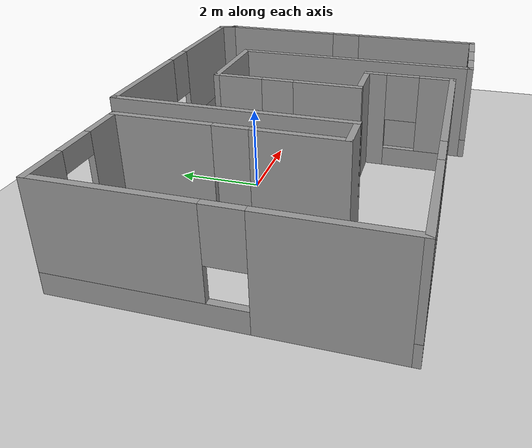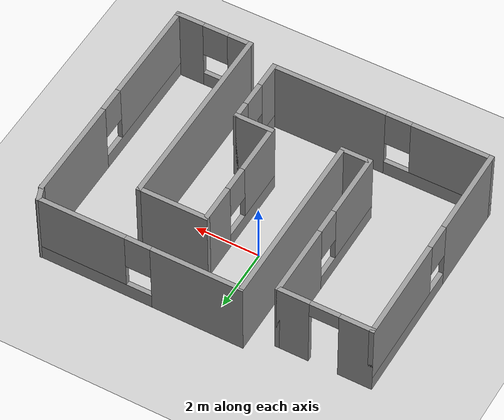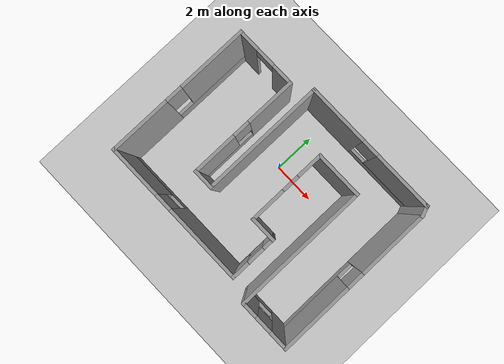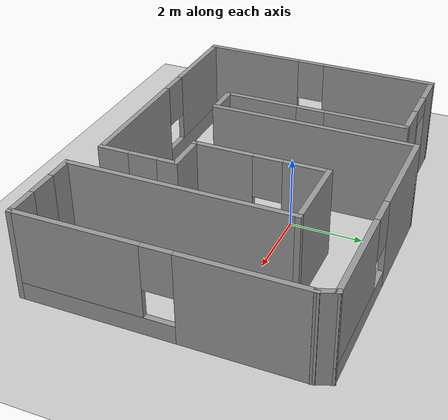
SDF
<sdf version="1.6">
 <world name="default">
  <light name="sun" type="directional">
   <pose>0 0 10 0 -0 0</pose>
   <diffuse>0.8 0.8 0.8 1</diffuse>
   <specular>0.2 0.2 0.2 1</specular>
   <attenuation>
    <range>1000</range>
    <constant>0.9</constant>
    <linear>0.01</linear>
    <quadratic>0.001</quadratic>
   </attenuation>
   <direction>-0.5 0.1 -0.9</direction>
  </light>
  <model name="ground_plane">
   <static>1</static>
   <link name="link">
    <collision name="collision">
     <geometry><plane><normal>0 0 1</normal><size>100 100</size></plane></geometry>
     <surface>
      <contact><collide_bitmask>65535</collide_bitmask></contact>
      <friction><ode><mu>100</mu><mu2>50</mu2></ode></friction>
     </surface>
    </collision>
    <visual name="visual">
     <cast_shadows>0</cast_shadows>
     <geometry><plane><normal>0 0 1</normal><size>100 100</size></plane></geometry>
     <material>
      <script><uri>file://media/materials/scripts/gazebo.material</uri><name>Gazebo/Grey</name></script>
     </material>
    </visual>
   </link>
  </model>
  <gravity>0 0 -9.8</gravity>
  <magnetic_field>6e-06 2.3e-05 -4.2e-05</magnetic_field>
  <atmosphere type="adiabatic"/>
  <physics name="default_physics" default="0" type="ode">
   <max_step_size>0.001</max_step_size>
   <real_time_factor>1</real_time_factor>
   <real_time_update_rate>1000</real_time_update_rate>
  </physics>
  <scene><ambient>0.4 0.4 0.4 1</ambient><background>0.7 0.7 0.7 1</background><shadows>1</shadows></scene>
  <spherical_coordinates>
   <surface_model>EARTH_WGS84</surface_model>
   <latitude_deg>0</latitude_deg>
   <longitude_deg>0</longitude_deg>
   <elevation>0</elevation>
   <heading_deg>0</heading_deg>
  </spherical_coordinates>
  <model name="home2">
   <pose>0.272903 -0.933957 0 0 -0 0</pose>
   <link name="Wall_1">
    <pose>5.08922 -0.210779 0 0 0 -1.5708</pose>
    <visual name="Wall_1_Visual_0">
     <pose>-2.10228 0 1.25 0 -0 0</pose>
     <geometry><box><size>3.29544 0.15 2.5</size></box></geometry>
     <material>
      <script><uri>file://media/materials/scripts/gazebo.material</uri><name>Gazebo/Grey</name></script>
      <ambient>1 1 1 1</ambient>
     </material>
     <meta><layer>0</layer></meta>
    </visual>
    <collision name="Wall_1_Collision_0">
     <geometry><box><size>3.29544 0.15 2.5</size></box></geometry>
     <pose>-2.10228 0 1.25 0 -0 0</pose>
    </collision>
    <visual name="Wall_1_Visual_1">
     <pose>1.64772 0 0.25 0 -0 0</pose>
     <geometry><box><size>4.20456 0.15 0.5</size></box></geometry>
     <material>
      <script><uri>file://media/materials/scripts/gazebo.material</uri><name>Gazebo/Grey</name></script>
      <ambient>1 1 1 1</ambient>
     </material>
     <meta><layer>0</layer></meta>
    </visual>
    <collision name="Wall_1_Collision_1">
     <geometry><box><size>4.20456 0.15 0.5</size></box></geometry>
     <pose>1.64772 0 0.25 0 -0 0</pose>
    </collision>
    <visual name="Wall_1_Visual_2">
     <pose>2.04772 0 1.5 0 -0 0</pose>
     <geometry><box><size>3.40456 0.15 2</size></box></geometry>
     <material>
      <script><uri>file://media/materials/scripts/gazebo.material</uri><name>Gazebo/Grey</name></script>
      <ambient>1 1 1 1</ambient>
     </material>
     <meta><layer>0</layer></meta>
    </visual>
    <collision name="Wall_1_Collision_2">
     <geometry><box><size>3.40456 0.15 2</size></box></geometry>
     <pose>2.04772 0 1.5 0 -0 0</pose>
    </collision>
    <visual name="Wall_1_Visual_3">
     <pose>-0.054557 0 1.9 0 -0 0</pose>
     <geometry><box><size>0.8 0.15 1.2</size></box></geometry>
     <material>
      <script><uri>file://media/materials/scripts/gazebo.material</uri><name>Gazebo/Grey</name></script>
      <ambient>1 1 1 1</ambient>
     </material>
     <meta><layer>0</layer></meta>
    </visual>
    <collision name="Wall_1_Collision_3">
     <geometry><box><size>0.8 0.15 1.2</size></box></geometry>
     <pose>-0.054557 0 1.9 0 -0 0</pose>
    </collision>
   </link>
   <link name="Wall_10">
    <pose>-3.68578 3.36422 0 0 -0 0</pose>
    <visual name="Wall_10_Visual_0">
     <pose>-0.972259 0 1.25 0 -0 0</pose>
     <geometry><box><size>1.05548 0.15 2.5</size></box></geometry>
     <material>
      <script><uri>file://media/materials/scripts/gazebo.material</uri><name>Gazebo/Grey</name></script>
      <ambient>1 1 1 1</ambient>
     </material>
     <meta><layer>0</layer></meta>
    </visual>
    <collision name="Wall_10_Collision_0">
     <geometry><box><size>1.05548 0.15 2.5</size></box></geometry>
     <pose>-0.972259 0 1.25 0 -0 0</pose>
    </collision>
    <visual name="Wall_10_Visual_1">
     <pose>0.977741 0 1.25 0 -0 0</pose>
     <geometry><box><size>1.04452 0.15 2.5</size></box></geometry>
     <material>
      <script><uri>file://media/materials/scripts/gazebo.material</uri><name>Gazebo/Grey</name></script>
      <ambient>1 1 1 1</ambient>
     </material>
     <meta><layer>0</layer></meta>
    </visual>
    <collision name="Wall_10_Collision_1">
     <geometry><box><size>1.04452 0.15 2.5</size></box></geometry>
     <pose>0.977741 0 1.25 0 -0 0</pose>
    </collision>
    <visual name="Wall_10_Visual_2">
     <pose>0.005483 0 2.25 0 -0 0</pose>
     <geometry><box><size>0.9 0.15 0.5</size></box></geometry>
     <material>
      <script><uri>file://media/materials/scripts/gazebo.material</uri><name>Gazebo/Grey</name></script>
      <ambient>1 1 1 1</ambient>
     </material>
     <meta><layer>0</layer></meta>
    </visual>
    <collision name="Wall_10_Collision_2">
     <geometry><box><size>0.9 0.15 0.5</size></box></geometry>
     <pose>0.005483 0 2.25 0 -0 0</pose>
    </collision>
   </link>
   <link name="Wall_11">
    <pose>-2.26078 0.814221 0 0 0 -1.5708</pose>
    <visual name="Wall_11_Visual_0">
     <pose>-1.45972 0 1.25 0 -0 0</pose>
     <geometry><box><size>2.33056 0.15 2.5</size></box></geometry>
     <material>
      <script><uri>file://media/materials/scripts/gazebo.material</uri><name>Gazebo/Grey</name></script>
      <ambient>1 1 1 1</ambient>
     </material>
     <meta><layer>0</layer></meta>
    </visual>
    <collision name="Wall_11_Collision_0">
     <geometry><box><size>2.33056 0.15 2.5</size></box></geometry>
     <pose>-1.45972 0 1.25 0 -0 0</pose>
    </collision>
    <visual name="Wall_11_Visual_1">
     <pose>1.16528 0 0.25 0 -0 0</pose>
     <geometry><box><size>2.91944 0.15 0.5</size></box></geometry>
     <material>
      <script><uri>file://media/materials/scripts/gazebo.material</uri><name>Gazebo/Grey</name></script>
      <ambient>1 1 1 1</ambient>
     </material>
     <meta><layer>0</layer></meta>
    </visual>
    <collision name="Wall_11_Collision_1">
     <geometry><box><size>2.91944 0.15 0.5</size></box></geometry>
     <pose>1.16528 0 0.25 0 -0 0</pose>
    </collision>
    <visual name="Wall_11_Visual_2">
     <pose>1.56528 0 1.5 0 -0 0</pose>
     <geometry><box><size>2.11944 0.15 2</size></box></geometry>
     <material>
      <script><uri>file://media/materials/scripts/gazebo.material</uri><name>Gazebo/Grey</name></script>
      <ambient>1 1 1 1</ambient>
     </material>
     <meta><layer>0</layer></meta>
    </visual>
    <collision name="Wall_11_Collision_2">
     <geometry><box><size>2.11944 0.15 2</size></box></geometry>
     <pose>1.56528 0 1.5 0 -0 0</pose>
    </collision>
    <visual name="Wall_11_Visual_3">
     <pose>0.105559 0 1.9 0 -0 0</pose>
     <geometry><box><size>0.8 0.15 1.2</size></box></geometry>
     <material>
      <script><uri>file://media/materials/scripts/gazebo.material</uri><name>Gazebo/Grey</name></script>
      <ambient>1 1 1 1</ambient>
     </material>
     <meta><layer>0</layer></meta>
    </visual>
    <collision name="Wall_11_Collision_3">
     <geometry><box><size>0.8 0.15 1.2</size></box></geometry>
     <pose>0.105559 0 1.9 0 -0 0</pose>
    </collision>
   </link>
   <link name="Wall_12">
    <collision name="Wall_12_Collision">
     <geometry><box><size>1 0.15 2.5</size></box></geometry>
     <pose>0 0 1.25 0 -0 0</pose>
    </collision>
    <visual name="Wall_12_Visual">
     <pose>0 0 1.25 0 -0 0</pose>
     <geometry><box><size>1 0.15 2.5</size></box></geometry>
     <material>
      <script><uri>file://media/materials/scripts/gazebo.material</uri><name>Gazebo/Grey</name></script>
      <ambient>1 1 1 1</ambient>
     </material>
     <meta><layer>0</layer></meta>
    </visual>
    <pose>-1.83578 -1.73578 0 0 -0 0</pose>
   </link>
   <link name="Wall_13">
    <collision name="Wall_13_Collision">
     <geometry><box><size>5.75 0.15 2.5</size></box></geometry>
     <pose>0 0 1.25 0 -0 0</pose>
    </collision>
    <visual name="Wall_13_Visual">
     <pose>0 0 1.25 0 -0 0</pose>
     <geometry><box><size>5.75 0.15 2.5</size></box></geometry>
     <material>
      <script><uri>file://media/materials/scripts/gazebo.material</uri><name>Gazebo/Grey</name></script>
      <ambient>1 1 1 1</ambient>
     </material>
     <meta><layer>0</layer></meta>
    </visual>
    <pose>-1.41078 1.06422 0 0 -0 1.5708</pose>
   </link>
   <link name="Wall_14">
    <pose>1.76422 3.86422 0 0 -0 0</pose>
    <visual name="Wall_14_Visual_0">
     <pose>-1.81181 0 1.25 0 -0 0</pose>
     <geometry><box><size>2.87637 0.15 2.5</size></box></geometry>
     <material>
      <script><uri>file://media/materials/scripts/gazebo.material</uri><name>Gazebo/Grey</name></script>
      <ambient>1 1 1 1</ambient>
     </material>
     <meta><layer>0</layer></meta>
    </visual>
    <collision name="Wall_14_Collision_0">
     <geometry><box><size>2.87637 0.15 2.5</size></box></geometry>
     <pose>-1.81181 0 1.25 0 -0 0</pose>
    </collision>
    <visual name="Wall_14_Visual_1">
     <pose>1.43819 0 0.25 0 -0 0</pose>
     <geometry><box><size>3.62363 0.15 0.5</size></box></geometry>
     <material>
      <script><uri>file://media/materials/scripts/gazebo.material</uri><name>Gazebo/Grey</name></script>
      <ambient>1 1 1 1</ambient>
     </material>
     <meta><layer>0</layer></meta>
    </visual>
    <collision name="Wall_14_Collision_1">
     <geometry><box><size>3.62363 0.15 0.5</size></box></geometry>
     <pose>1.43819 0 0.25 0 -0 0</pose>
    </collision>
    <visual name="Wall_14_Visual_2">
     <pose>1.83819 0 1.5 0 -0 0</pose>
     <geometry><box><size>2.82363 0.15 2</size></box></geometry>
     <material>
      <script><uri>file://media/materials/scripts/gazebo.material</uri><name>Gazebo/Grey</name></script>
      <ambient>1 1 1 1</ambient>
     </material>
     <meta><layer>0</layer></meta>
    </visual>
    <collision name="Wall_14_Collision_2">
     <geometry><box><size>2.82363 0.15 2</size></box></geometry>
     <pose>1.83819 0 1.5 0 -0 0</pose>
    </collision>
    <visual name="Wall_14_Visual_3">
     <pose>0.026374 0 1.9 0 -0 0</pose>
     <geometry><box><size>0.8 0.15 1.2</size></box></geometry>
     <material>
      <script><uri>file://media/materials/scripts/gazebo.material</uri><name>Gazebo/Grey</name></script>
      <ambient>1 1 1 1</ambient>
     </material>
     <meta><layer>0</layer></meta>
    </visual>
    <collision name="Wall_14_Collision_3">
     <geometry><box><size>0.8 0.15 1.2</size></box></geometry>
     <pose>0.026374 0 1.9 0 -0 0</pose>
    </collision>
   </link>
   <link name="Wall_15">
    <collision name="Wall_15_Collision">
     <geometry><box><size>0.5772 0.15 2.5</size></box></geometry>
     <pose>0 0 1.25 0 -0 0</pose>
    </collision>
    <visual name="Wall_15_Visual">
     <pose>0 0 1.25 0 -0 0</pose>
     <geometry><box><size>0.5772 0.15 2.5</size></box></geometry>
     <material>
      <script><uri>file://media/materials/scripts/gazebo.material</uri><name>Gazebo/Grey</name></script>
      <ambient>1 1 1 1</ambient>
     </material>
     <meta><layer>0</layer></meta>
    </visual>
    <pose>5.01422 3.66422 0 0 0 -1.21203</pose>
   </link>
   <link name="Wall_2">
    <pose>3.91422 -3.88578 0 0 -0 3.14159</pose>
    <visual name="Wall_2_Visual_0">
     <pose>-0.788979 0 1.25 0 -0 0</pose>
     <geometry><box><size>0.922042 0.15 2.5</size></box></geometry>
     <material>
      <script><uri>file://media/materials/scripts/gazebo.material</uri><name>Gazebo/Grey</name></script>
      <ambient>1 1 1 1</ambient>
     </material>
     <meta><layer>0</layer></meta>
    </visual>
    <collision name="Wall_2_Collision_0">
     <geometry><box><size>0.922042 0.15 2.5</size></box></geometry>
     <pose>-0.788979 0 1.25 0 -0 0</pose>
    </collision>
    <visual name="Wall_2_Visual_1">
     <pose>0.461021 0 0.25 0 -0 0</pose>
     <geometry><box><size>1.57796 0.15 0.5</size></box></geometry>
     <material>
      <script><uri>file://media/materials/scripts/gazebo.material</uri><name>Gazebo/Grey</name></script>
      <ambient>1 1 1 1</ambient>
     </material>
     <meta><layer>0</layer></meta>
    </visual>
    <collision name="Wall_2_Collision_1">
     <geometry><box><size>1.57796 0.15 0.5</size></box></geometry>
     <pose>0.461021 0 0.25 0 -0 0</pose>
    </collision>
    <visual name="Wall_2_Visual_2">
     <pose>0.861021 0 1.5 0 -0 0</pose>
     <geometry><box><size>0.777958 0.15 2</size></box></geometry>
     <material>
      <script><uri>file://media/materials/scripts/gazebo.material</uri><name>Gazebo/Grey</name></script>
      <ambient>1 1 1 1</ambient>
     </material>
     <meta><layer>0</layer></meta>
    </visual>
    <collision name="Wall_2_Collision_2">
     <geometry><box><size>0.777958 0.15 2</size></box></geometry>
     <pose>0.861021 0 1.5 0 -0 0</pose>
    </collision>
    <visual name="Wall_2_Visual_3">
     <pose>0.072042 0 1.9 0 -0 0</pose>
     <geometry><box><size>0.8 0.15 1.2</size></box></geometry>
     <material>
      <script><uri>file://media/materials/scripts/gazebo.material</uri><name>Gazebo/Grey</name></script>
      <ambient>1 1 1 1</ambient>
     </material>
     <meta><layer>0</layer></meta>
    </visual>
    <collision name="Wall_2_Collision_3">
     <geometry><box><size>0.8 0.15 1.2</size></box></geometry>
     <pose>0.072042 0 1.9 0 -0 0</pose>
    </collision>
   </link>
   <link name="Wall_3">
    <collision name="Wall_3_Collision">
     <geometry><box><size>6.25 0.15 2.5</size></box></geometry>
     <pose>0 0 1.25 0 -0 0</pose>
    </collision>
    <visual name="Wall_3_Visual">
     <pose>0 0 1.25 0 -0 0</pose>
     <geometry><box><size>6.25 0.15 2.5</size></box></geometry>
     <material>
      <script><uri>file://media/materials/scripts/gazebo.material</uri><name>Gazebo/Grey</name></script>
      <ambient>1 1 1 1</ambient>
     </material>
     <meta><layer>0</layer></meta>
    </visual>
    <pose>2.73922 -0.835779 0 0 -0 1.5708</pose>
   </link>
   <link name="Wall_4">
    <collision name="Wall_4_Collision">
     <geometry><box><size>2.25 0.15 2.5</size></box></geometry>
     <pose>0 0 1.25 0 -0 0</pose>
    </collision>
    <visual name="Wall_4_Visual">
     <pose>0 0 1.25 0 -0 0</pose>
     <geometry><box><size>2.25 0.15 2.5</size></box></geometry>
     <material>
      <script><uri>file://media/materials/scripts/gazebo.material</uri><name>Gazebo/Grey</name></script>
      <ambient>1 1 1 1</ambient>
     </material>
     <meta><layer>0</layer></meta>
    </visual>
    <pose>1.68922 2.21422 0 0 -0 3.14159</pose>
   </link>
   <link name="Wall_5">
    <pose>0.639221 0.414221 0 0 0 -1.5708</pose>
    <visual name="Wall_5_Visual_0">
     <pose>-1.24449 0 1.25 0 -0 0</pose>
     <geometry><box><size>1.26101 0.15 2.5</size></box></geometry>
     <material>
      <script><uri>file://media/materials/scripts/gazebo.material</uri><name>Gazebo/Grey</name></script>
      <ambient>1 1 1 1</ambient>
     </material>
     <meta><layer>0</layer></meta>
    </visual>
    <collision name="Wall_5_Collision_0">
     <geometry><box><size>1.26101 0.15 2.5</size></box></geometry>
     <pose>-1.24449 0 1.25 0 -0 0</pose>
    </collision>
    <visual name="Wall_5_Visual_1">
     <pose>0.630507 0 0.25 0 -0 0</pose>
     <geometry><box><size>2.48899 0.15 0.5</size></box></geometry>
     <material>
      <script><uri>file://media/materials/scripts/gazebo.material</uri><name>Gazebo/Grey</name></script>
      <ambient>1 1 1 1</ambient>
     </material>
     <meta><layer>0</layer></meta>
    </visual>
    <collision name="Wall_5_Collision_1">
     <geometry><box><size>2.48899 0.15 0.5</size></box></geometry>
     <pose>0.630507 0 0.25 0 -0 0</pose>
    </collision>
    <visual name="Wall_5_Visual_2">
     <pose>1.03051 0 1.5 0 -0 0</pose>
     <geometry><box><size>1.68899 0.15 2</size></box></geometry>
     <material>
      <script><uri>file://media/materials/scripts/gazebo.material</uri><name>Gazebo/Grey</name></script>
      <ambient>1 1 1 1</ambient>
     </material>
     <meta><layer>0</layer></meta>
    </visual>
    <collision name="Wall_5_Collision_2">
     <geometry><box><size>1.68899 0.15 2</size></box></geometry>
     <pose>1.03051 0 1.5 0 -0 0</pose>
    </collision>
    <visual name="Wall_5_Visual_3">
     <pose>-0.213986 0 1.9 0 -0 0</pose>
     <geometry><box><size>0.8 0.15 1.2</size></box></geometry>
     <material>
      <script><uri>file://media/materials/scripts/gazebo.material</uri><name>Gazebo/Grey</name></script>
      <ambient>1 1 1 1</ambient>
     </material>
     <meta><layer>0</layer></meta>
    </visual>
    <collision name="Wall_5_Collision_3">
     <geometry><box><size>0.8 0.15 1.2</size></box></geometry>
     <pose>-0.213986 0 1.9 0 -0 0</pose>
    </collision>
   </link>
   <link name="Wall_6">
    <collision name="Wall_6_Collision">
     <geometry><box><size>1.25 0.15 2.5</size></box></geometry>
     <pose>0 0 1.25 0 -0 0</pose>
    </collision>
    <visual name="Wall_6_Visual">
     <pose>0 0 1.25 0 -0 0</pose>
     <geometry><box><size>1.25 0.15 2.5</size></box></geometry>
     <material>
      <script><uri>file://media/materials/scripts/gazebo.material</uri><name>Gazebo/Grey</name></script>
      <ambient>1 1 1 1</ambient>
     </material>
     <meta><layer>0</layer></meta>
    </visual>
    <pose>1.18922 -1.38578 0 0 -0 0</pose>
   </link>
   <link name="Wall_7">
    <pose>1.73922 -2.43578 0 0 0 -1.5708</pose>
    <visual name="Wall_7_Visual_0">
     <pose>-0.836259 0 1.25 0 -0 0</pose>
     <geometry><box><size>0.577482 0.15 2.5</size></box></geometry>
     <material>
      <script><uri>file://media/materials/scripts/gazebo.material</uri><name>Gazebo/Grey</name></script>
      <ambient>1 1 1 1</ambient>
     </material>
     <meta><layer>0</layer></meta>
    </visual>
    <collision name="Wall_7_Collision_0">
     <geometry><box><size>0.577482 0.15 2.5</size></box></geometry>
     <pose>-0.836259 0 1.25 0 -0 0</pose>
    </collision>
    <visual name="Wall_7_Visual_1">
     <pose>0.288741 0 0.25 0 -0 0</pose>
     <geometry><box><size>1.67252 0.15 0.5</size></box></geometry>
     <material>
      <script><uri>file://media/materials/scripts/gazebo.material</uri><name>Gazebo/Grey</name></script>
      <ambient>1 1 1 1</ambient>
     </material>
     <meta><layer>0</layer></meta>
    </visual>
    <collision name="Wall_7_Collision_1">
     <geometry><box><size>1.67252 0.15 0.5</size></box></geometry>
     <pose>0.288741 0 0.25 0 -0 0</pose>
    </collision>
    <visual name="Wall_7_Visual_2">
     <pose>0.688741 0 1.5 0 -0 0</pose>
     <geometry><box><size>0.872518 0.15 2</size></box></geometry>
     <material>
      <script><uri>file://media/materials/scripts/gazebo.material</uri><name>Gazebo/Grey</name></script>
      <ambient>1 1 1 1</ambient>
     </material>
     <meta><layer>0</layer></meta>
    </visual>
    <collision name="Wall_7_Collision_2">
     <geometry><box><size>0.872518 0.15 2</size></box></geometry>
     <pose>0.688741 0 1.5 0 -0 0</pose>
    </collision>
    <visual name="Wall_7_Visual_3">
     <pose>-0.147518 0 1.9 0 -0 0</pose>
     <geometry><box><size>0.8 0.15 1.2</size></box></geometry>
     <material>
      <script><uri>file://media/materials/scripts/gazebo.material</uri><name>Gazebo/Grey</name></script>
      <ambient>1 1 1 1</ambient>
     </material>
     <meta><layer>0</layer></meta>
    </visual>
    <collision name="Wall_7_Collision_3">
     <geometry><box><size>0.8 0.15 1.2</size></box></geometry>
     <pose>-0.147518 0 1.9 0 -0 0</pose>
    </collision>
   </link>
   <link name="Wall_8">
    <pose>-1.68578 -3.48578 0 0 -0 3.14159</pose>
    <visual name="Wall_8_Visual_0">
     <pose>-1.66677 0 1.25 0 -0 0</pose>
     <geometry><box><size>3.66645 0.15 2.5</size></box></geometry>
     <material>
      <script><uri>file://media/materials/scripts/gazebo.material</uri><name>Gazebo/Grey</name></script>
      <ambient>1 1 1 1</ambient>
     </material>
     <meta><layer>0</layer></meta>
    </visual>
    <collision name="Wall_8_Collision_0">
     <geometry><box><size>3.66645 0.15 2.5</size></box></geometry>
     <pose>-1.66677 0 1.25 0 -0 0</pose>
    </collision>
    <visual name="Wall_8_Visual_1">
     <pose>1.83323 0 0.25 0 -0 0</pose>
     <geometry><box><size>3.33355 0.15 0.5</size></box></geometry>
     <material>
      <script><uri>file://media/materials/scripts/gazebo.material</uri><name>Gazebo/Grey</name></script>
      <ambient>1 1 1 1</ambient>
     </material>
     <meta><layer>0</layer></meta>
    </visual>
    <collision name="Wall_8_Collision_1">
     <geometry><box><size>3.33355 0.15 0.5</size></box></geometry>
     <pose>1.83323 0 0.25 0 -0 0</pose>
    </collision>
    <visual name="Wall_8_Visual_2">
     <pose>2.23323 0 1.5 0 -0 0</pose>
     <geometry><box><size>2.53355 0.15 2</size></box></geometry>
     <material>
      <script><uri>file://media/materials/scripts/gazebo.material</uri><name>Gazebo/Grey</name></script>
      <ambient>1 1 1 1</ambient>
     </material>
     <meta><layer>0</layer></meta>
    </visual>
    <collision name="Wall_8_Collision_2">
     <geometry><box><size>2.53355 0.15 2</size></box></geometry>
     <pose>2.23323 0 1.5 0 -0 0</pose>
    </collision>
    <visual name="Wall_8_Visual_3">
     <pose>0.566454 0 1.9 0 -0 0</pose>
     <geometry><box><size>0.8 0.15 1.2</size></box></geometry>
     <material>
      <script><uri>file://media/materials/scripts/gazebo.material</uri><name>Gazebo/Grey</name></script>
      <ambient>1 1 1 1</ambient>
     </material>
     <meta><layer>0</layer></meta>
    </visual>
    <collision name="Wall_8_Collision_3">
     <geometry><box><size>0.8 0.15 1.2</size></box></geometry>
     <pose>0.566454 0 1.9 0 -0 0</pose>
    </collision>
   </link>
   <link name="Wall_9">
    <pose>-5.11078 -0.060779 0 0 -0 1.5708</pose>
    <visual name="Wall_9_Visual_0">
     <pose>-2.05806 0 1.25 0 -0 0</pose>
     <geometry><box><size>2.88388 0.15 2.5</size></box></geometry>
     <material>
      <script><uri>file://media/materials/scripts/gazebo.material</uri><name>Gazebo/Grey</name></script>
      <ambient>1 1 1 1</ambient>
     </material>
     <meta><layer>0</layer></meta>
    </visual>
    <collision name="Wall_9_Collision_0">
     <geometry><box><size>2.88388 0.15 2.5</size></box></geometry>
     <pose>-2.05806 0 1.25 0 -0 0</pose>
    </collision>
    <visual name="Wall_9_Visual_1">
     <pose>1.44194 0 0.25 0 -0 0</pose>
     <geometry><box><size>4.11612 0.15 0.5</size></box></geometry>
     <material>
      <script><uri>file://media/materials/scripts/gazebo.material</uri><name>Gazebo/Grey</name></script>
      <ambient>1 1 1 1</ambient>
     </material>
     <meta><layer>0</layer></meta>
    </visual>
    <collision name="Wall_9_Collision_1">
     <geometry><box><size>4.11612 0.15 0.5</size></box></geometry>
     <pose>1.44194 0 0.25 0 -0 0</pose>
    </collision>
    <visual name="Wall_9_Visual_2">
     <pose>1.84194 0 1.5 0 -0 0</pose>
     <geometry><box><size>3.31612 0.15 2</size></box></geometry>
     <material>
      <script><uri>file://media/materials/scripts/gazebo.material</uri><name>Gazebo/Grey</name></script>
      <ambient>1 1 1 1</ambient>
     </material>
     <meta><layer>0</layer></meta>
    </visual>
    <collision name="Wall_9_Collision_2">
     <geometry><box><size>3.31612 0.15 2</size></box></geometry>
     <pose>1.84194 0 1.5 0 -0 0</pose>
    </collision>
    <visual name="Wall_9_Visual_3">
     <pose>-0.216124 0 1.9 0 -0 0</pose>
     <geometry><box><size>0.8 0.15 1.2</size></box></geometry>
     <material>
      <script><uri>file://media/materials/scripts/gazebo.material</uri><name>Gazebo/Grey</name></script>
      <ambient>1 1 1 1</ambient>
     </material>
     <meta><layer>0</layer></meta>
    </visual>
    <collision name="Wall_9_Collision_3">
     <geometry><box><size>0.8 0.15 1.2</size></box></geometry>
     <pose>-0.216124 0 1.9 0 -0 0</pose>
    </collision>
   </link>
   <static>1</static>
  </model>
 </world>
</sdf>
